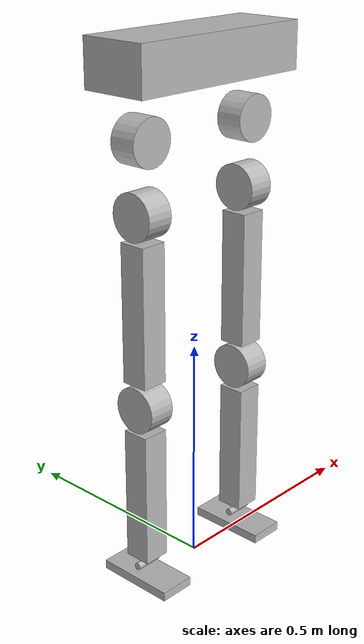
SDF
<?xml version="1.0" ?>
<sdf version="1.5">

<model name="simplified_biped">
    <link name="torso_connection">
        <self_collide> 1 </self_collide>

        <pose> 0 0 1.115 0 0 0 </pose>

        <inertial>
            <mass>0.001</mass>

            <inertia>
                <ixx>0.000003</ixx>
                <iyy>0.0000166</iyy>
                <izz>0.0000175</izz>
                <ixy>0</ixy>
                <ixz>0</ixz>
                <iyz>0</iyz>
            </inertia>
        </inertial>

        <collision name="torso_connection_collision">
            <geometry>
                <box>
                    <size> 0.44 0.15 0.10 </size>
                </box>
            </geometry>
        </collision>

        <visual name="torso_connection_visual">
            <geometry>
                <box>
                    <size> 0.44 0.15 0.10 </size>
                </box>
            </geometry>
        </visual>
    </link>

    <!--Left leg-->
    <link name="left_lower_leg">

        <self_collide>1</self_collide>

        <pose> 0.15 0 0.21 0 0 0 </pose>

            <inertial>
                <mass>0.1</mass>
                <inertia>
                    <ixx>0.00076</ixx>
                    <izz>0.00006</izz>
                    <iyy>0.00076</iyy>
                    <ixy>0</ixy>
                    <ixz>0</ixz>
                    <iyz>0</iyz>
                </inertia>
            </inertial>

            <collision name="left_base_collision">
                <geometry>
                    <box>
                        <size> 0.06 0.06 0.3 </size>
                    </box>
                </geometry>
            </collision>

            <visual name="left_base_visual">
                <geometry>
                    <box>
                        <size> 0.06 0.06 0.3 </size>
                    </box>
                </geometry>
            </visual>
    </link>

    <link name="left_knee">

        <self_collide>1</self_collide>
        <pose> 0.15 0 0.415 0 1.570796 0</pose>

        <inertial>
            <mass>0.01</mass>
            <inertia>
                <ixx>0.000005</ixx>
                <iyy>0.000005</iyy>
                <izz>0.000007</izz>
                <ixy>0</ixy>
                <ixz>0</ixz>
                <iyz>0</iyz>
            </inertia>
        </inertial>

        <collision name="left_knee_collision">
            <geometry>
                <cylinder>
                    <radius>0.05</radius>
                    <length>0.06</length>
                </cylinder>
            </geometry>
        </collision>

        <visual name="left_knee_visual">
            <pose> 0 0 0 0 0 0</pose>
            <geometry>
                <cylinder>
                    <radius>0.05</radius>
                    <length>0.06</length>
                </cylinder>
            </geometry>
        </visual>
    </link>

    <link name="left_upper_leg">

        <self_collide>1</self_collide>

        <pose> 0.15 0 0.62 0 0 0 </pose>

        <inertial>
            <mass>0.1</mass>
            <inertia>
                <ixx>0.00076</ixx>
                <iyy>0.00076</iyy>
                <izz>0.00006</izz>
                <ixy>0</ixy>
                <ixz>0</ixz>
                <iyz>0</iyz>
            </inertia>
        </inertial>

        <!-- To make them perfectly stacked: 0.65m height-->

        <collision name="left_upper_leg_collision">
            <geometry>
                <box>
                    <size> 0.06 0.06 0.3 </size>
                </box>
            </geometry>
        </collision>

        <visual name="left_upper_leg_visual">
            <geometry>
                <box>
                    <size> 0.06 0.06 0.3 </size>
                </box>
            </geometry>
        </visual>
    </link>

    <link name="left_foot_base">

        <self_collide>1</self_collide>
        <pose> 0.15 0 0.01 0 0 0</pose>

        <inertial>
            <mass>0.01</mass>
            <inertia>
                <ixx>0.000025</ixx>
                <iyy>0.0000045</iyy>
                <izz>0.000028</izz>
                <ixy>0</ixy>
                <ixz>0</ixz>
                <iyz>0</iyz>
            </inertia>
        </inertial>

        <collision name="left_foot_base_collision">
            <geometry>
                <box>
                    <size> 0.08 0.18 0.02</size>
                </box>
            </geometry>
        </collision>

        <visual name="left_foot_base_visual">
            <geometry>
                <box>
                    <size> 0.08 0.18 0.02</size>
                </box>
            </geometry>
        </visual>
    </link>

    <link name="left_ankle">

        <self_collide>1</self_collide>
        <pose> 0.15 0 0.04 0 1.570796 0 </pose>

        <inertial>
            <mass>0.03</mass>
            <inertia>
                <ixx>0.0000024</ixx>
                <iyy>0.0000024</iyy>
                <izz>0.0000004</izz>
                <ixy>0</ixy>
                <ixz>0</ixz>
                <iyz>0</iyz>
            </inertia>
        </inertial>

        <collision name="left_ankle_collision">
            <geometry>
                <cylinder>
                    <radius>0.008</radius>
                    <length>0.06</length>
                </cylinder>
            </geometry>
        </collision>

        <visual name="left_ankle_visual">
            <geometry>
                <cylinder>
                    <radius>0.008</radius>
                    <length>0.06</length>
                </cylinder>
            </geometry>
        </visual>
    </link>

    <link name="left_hip_axis_1">

        <self_collide>1</self_collide>
        <pose> 0.15 0 0.825 0 1.570796 0 </pose>

        <inertial>
            <mass>0.1</mass>
            <inertia>
                <ixx>0.0001</ixx>
                <iyy>0.0001</iyy>
                <izz>0.00014</izz>
                <ixy>0</ixy>
                <ixz>0</ixz>
                <iyz>0</iyz>
            </inertia>
        </inertial>

        <collision name="left_hip_axis_1_collision">
            <geometry>
                <cylinder>
                    <radius>0.05</radius>
                    <length>0.06</length>
                </cylinder>
            </geometry>
        </collision>

        <visual name="left_hip_axis_1_visual">
            <pose> 0 0 0 0 0 0</pose>
            <geometry>
                <cylinder>
                    <radius>0.05</radius>
                    <length>0.06</length>
                </cylinder>
            </geometry>
        </visual>
    </link>

    <link name="left_hip_axis_2">

        <self_collide>1</self_collide>
        <pose> 0.15 0 0.97 0 1.570796 1.570796 </pose>

        <inertial>
            <mass>0.1</mass>
            <inertia>
                <ixx>0.0001</ixx>
                <iyy>0.0001</iyy>
                <izz>0.00014</izz>
                <ixy>0</ixy>
                <ixz>0</ixz>
                <iyz>0</iyz>
            </inertia>
        </inertial>

        <collision name="left_hip_axis_2_collision">
            <geometry>
                <cylinder>
                    <radius>0.05</radius>
                    <length>0.06</length>
                </cylinder>
            </geometry>
        </collision>

        <visual name="left_hip_axis_2_visual">
            <pose> 0 0 0 0 0 0</pose>
            <geometry>
                <cylinder>
                    <radius>0.05</radius>
                    <length>0.06</length>
                </cylinder>
            </geometry>
        </visual>
    </link>

    <link name="left_hip_axis_3">

        <self_collide>1</self_collide>
        <pose> 0.15 0 1.115 0 0 0 </pose> <!--145mm from center of hip axis 2-->

        <inertial>
            <mass>0.1</mass>
            <inertia>
                <ixx>0.0001</ixx>
                <iyy>0.0001</iyy>
                <izz>0.00014</izz>
                <ixy>0</ixy>
                <ixz>0</ixz>
                <iyz>0</iyz>
            </inertia>
        </inertial>

        <collision name="left_hip_axis_3_collision">
            <geometry>
                <cylinder>
                    <radius>0.05</radius>
                    <length>0.06</length>
                </cylinder>
            </geometry>
        </collision>

        <visual name="left_hip_axis_3_visual">
            <geometry>
                <cylinder>
                    <radius>0.05</radius>
                    <length>0.06</length>
                </cylinder>
            </geometry>
        </visual>
    </link>

    <joint type="revolute" name="left_knee_lower_leg_joint">

        <pose> 0 0 0.205 0 0 0 </pose>

        <parent>left_knee</parent>

        <child>left_lower_leg</child>

        <axis>
            <xyz>1 0 0 </xyz>
        </axis>
    </joint>

    <joint type="revolute" name="left_hip_axis_1_upper_leg_joint">

        <pose> 0 0 0.205 0 0 0 </pose>

        <parent>left_hip_axis_1</parent>

        <child>left_upper_leg</child>

        <axis>
            <xyz>1 0 0 </xyz>
        </axis>
    </joint>

    <joint type="revolute" name="left_hip_axis_2_hip_axis_1_joint">
        <pose> -0.145 0 0 0 -1.570796 0 </pose>

        <parent>left_hip_axis_2</parent>
        <child>left_hip_axis_1</child>

        <axis>
            <xyz> 0 1 0 </xyz>
        </axis>
    </joint>

    <joint type="revolute" name="left_hip_axis_3_hip_axis_2_joint">
        <pose> -0.145 0 0 0 -1.5707 0 </pose>

        <parent>left_hip_axis_3</parent>
        <child>left_hip_axis_2</child>

        <axis>
            <xyz> 0 0 1 </xyz>
        </axis>
    </joint>

    <!--Change joint type back to revolute if actively driven ankle joint is needed-->
    <joint type="revolute" name="left_ankle_foot_base_joint">
        <pose> 0 0 0.03 0 0 0 </pose>

        <parent>left_ankle</parent>
        <child>left_foot_base</child>
        <axis>
            <xyz>1 0 0 </xyz>
        </axis>
    </joint>

    <joint type="fixed" name="left_knee_upper_leg_joint">
        <pose>0 0 0 0 0 0 </pose>
        <parent>left_upper_leg</parent>
        <child>left_knee</child>
    </joint>

    <joint type="fixed" name="left_ankle_lower_leg_joint">
        <pose> 0 0 0 0 0 0 </pose>
        <parent>left_lower_leg</parent>
        <child>left_ankle</child>
    </joint>

    <!--Right leg-->

    <link name="right_lower_leg">

        <self_collide>1</self_collide>

        <pose> -0.15 0 0.21 0 0 0 </pose>

            <inertial>
                <mass>0.1</mass>
                <inertia>
                    <ixx>0.00076</ixx>
                    <izz>0.00006</izz>
                    <iyy>0.00076</iyy>
                    <ixy>0</ixy>
                    <ixz>0</ixz>
                    <iyz>0</iyz>
                </inertia>
            </inertial>

            <collision name="right_base_collision">
                <geometry>
                    <box>
                        <size> 0.06 0.06 0.3 </size>
                    </box>
                </geometry>
            </collision>

            <visual name="right_base_visual">
                <geometry>
                    <box>
                        <size> 0.06 0.06 0.3 </size>
                    </box>
                </geometry>
            </visual>
    </link>

    <link name="right_knee">

        <self_collide>1</self_collide>
        <pose> -0.15 0 0.415 0 1.570796 0</pose>

        <inertial>
            <mass>0.01</mass>
            <inertia>
                <ixx>0.000005</ixx>
                <iyy>0.000005</iyy>
                <izz>0.000007</izz>
                <ixy>0</ixy>
                <ixz>0</ixz>
                <iyz>0</iyz>
            </inertia>
        </inertial>

        <collision name="right_knee_collision">
            <geometry>
                <cylinder>
                    <radius>0.05</radius>
                    <length>0.06</length>
                </cylinder>
            </geometry>
        </collision>

        <visual name="right_knee_visual">
            <pose> 0 0 0 0 0 0</pose>
            <geometry>
                <cylinder>
                    <radius>0.05</radius>
                    <length>0.06</length>
                </cylinder>
            </geometry>
        </visual>
    </link>

    <link name="right_upper_leg">

        <self_collide>1</self_collide>

        <pose> -0.15 0 0.62 0 0 0 </pose>

        <inertial>
            <mass>0.1</mass>
            <inertia>
                <ixx>0.00076</ixx>
                <iyy>0.00076</iyy>
                <izz>0.00006</izz>
                <ixy>0</ixy>
                <ixz>0</ixz>
                <iyz>0</iyz>
            </inertia>
        </inertial>

        <!-- To make them perfectly stacked: 0.65m height-->

        <collision name="right_upper_leg_collision">
            <geometry>
                <box>
                    <size> 0.06 0.06 0.3 </size>
                </box>
            </geometry>
        </collision>

        <visual name="right_upper_leg_visual">
            <geometry>
                <box>
                    <size> 0.06 0.06 0.3 </size>
                </box>
            </geometry>
        </visual>
    </link>

    <link name="right_foot_base">

        <self_collide>1</self_collide>
        <pose> -0.15 0 0.01 0 0 0</pose>

        <inertial>
            <mass>0.01</mass>
            <inertia>
                <ixx>0.000025</ixx>
                <iyy>0.0000045</iyy>
                <izz>0.000028</izz>
                <ixy>0</ixy>
                <ixz>0</ixz>
                <iyz>0</iyz>
            </inertia>
        </inertial>

        <collision name="right_foot_base_collision">
            <geometry>
                <box>
                    <size> 0.08 0.18 0.02</size>
                </box>
            </geometry>
        </collision>

        <visual name="right_foot_base_visual">
            <geometry>
                <box>
                    <size> 0.08 0.18 0.02</size>
                </box>
            </geometry>
        </visual>
    </link>

    <link name="right_ankle">

        <self_collide>1</self_collide>
        <pose> -0.15 0 0.04 0 1.570796 0 </pose>

        <inertial>
            <mass>0.03</mass>
            <inertia>
                <ixx>0.0000024</ixx>
                <iyy>0.0000024</iyy>
                <izz>0.0000004</izz>
                <ixy>0</ixy>
                <ixz>0</ixz>
                <iyz>0</iyz>
            </inertia>
        </inertial>

        <collision name="right_ankle_collision">
            <geometry>
                <cylinder>
                    <radius>0.008</radius>
                    <length>0.06</length>
                </cylinder>
            </geometry>
        </collision>

        <visual name="right_ankle_visual">
            <geometry>
                <cylinder>
                    <radius>0.008</radius>
                    <length>0.06</length>
                </cylinder>
            </geometry>
        </visual>
    </link>

    <link name="right_hip_axis_1">

        <self_collide>1</self_collide>
        <pose> -0.15 0 0.825 0 1.570796 0 </pose>

        <inertial>
            <mass>0.1</mass>
            <inertia>
                <ixx>0.0001</ixx>
                <iyy>0.0001</iyy>
                <izz>0.00014</izz>
                <ixy>0</ixy>
                <ixz>0</ixz>
                <iyz>0</iyz>
            </inertia>
        </inertial>

        <collision name="right_hip_axis_1_collision">
            <geometry>
                <cylinder>
                    <radius>0.05</radius>
                    <length>0.06</length>
                </cylinder>
            </geometry>
        </collision>

        <visual name="right_hip_axis_1_visual">
            <pose> 0 0 0 0 0 0</pose>
            <geometry>
                <cylinder>
                    <radius>0.05</radius>
                    <length>0.06</length>
                </cylinder>
            </geometry>
        </visual>
    </link>

    <link name="right_hip_axis_2">

        <self_collide>1</self_collide>
        <pose> -0.15 0 0.97 0 1.570796 1.570796 </pose>

        <inertial>
            <mass>0.1</mass>
            <inertia>
                <ixx>0.0001</ixx>
                <iyy>0.0001</iyy>
                <izz>0.00014</izz>
                <ixy>0</ixy>
                <ixz>0</ixz>
                <iyz>0</iyz>
            </inertia>
        </inertial>

        <collision name="right_hip_axis_2_collision">
            <geometry>
                <cylinder>
                    <radius>0.05</radius>
                    <length>0.06</length>
                </cylinder>
            </geometry>
        </collision>

        <visual name="right_hip_axis_2_visual">
            <pose> 0 0 0 0 0 0</pose>
            <geometry>
                <cylinder>
                    <radius>0.05</radius>
                    <length>0.06</length>
                </cylinder>
            </geometry>
        </visual>
    </link>

    <link name="right_hip_axis_3">

        <self_collide>1</self_collide>
        <pose> -0.15 0 1.115 0 0 0 </pose> <!--145mm from center of hip axis 2-->

        <inertial>
            <mass>0.1</mass>
            <inertia>
                <ixx>0.00010</ixx>
                <iyy>0.00010</iyy>
                <izz>0.00014</izz>
                <ixy>0</ixy>
                <ixz>0</ixz>
                <iyz>0</iyz>
            </inertia>
        </inertial>

        <collision name="right_hip_axis_3_collision">
            <geometry>
                <cylinder>
                    <radius>0.05</radius>
                    <length>0.06</length>
                </cylinder>
            </geometry>
        </collision>

        <visual name="right_hip_axis_3_visual">
            <geometry>
                <cylinder>
                    <radius>0.05</radius>
                    <length>0.06</length>
                </cylinder>
            </geometry>
        </visual>
    </link>

    <joint type="revolute" name="right_knee_lower_leg_joint">

        <pose> 0 0 0.205 0 0 0 </pose>

        <parent>right_knee</parent>

        <child>right_lower_leg</child>

        <axis>
            <xyz>1 0 0 </xyz>
        </axis>
    </joint>

    <joint type="revolute" name="right_hip_axis_1_upper_leg_joint">

        <pose> 0 0 0.205 0 0 0 </pose>

        <parent>right_hip_axis_1</parent>

        <child>right_upper_leg</child>

        <axis>
            <xyz>1 0 0 </xyz>
        </axis>
    </joint>

    <joint type="revolute" name="right_hip_axis_2_hip_axis_1_joint">
        <pose> -0.145 0 0 0 -1.570796 0 </pose>

        <parent>right_hip_axis_2</parent>
        <child>right_hip_axis_1</child>

        <axis>
            <xyz> 0 1 0 </xyz>
        </axis>
    </joint>

    <joint type="revolute" name="right_hip_axis_3_hip_axis_2_joint">
        <pose> -0.145 0 0 0 -1.5707 0 </pose>

        <parent>right_hip_axis_3</parent>
        <child>right_hip_axis_2</child>

        <axis>
            <xyz> 0 0 1 </xyz>
        </axis>
    </joint>

    <!--Change joint type back to revolute if actively driven ankle joint is needed-->
    <joint type="revolute" name="right_ankle_foot_base_joint">
        <pose> 0 0 0.03 0 0 0 </pose>

        <parent>right_ankle</parent>
        <child>right_foot_base</child>
        <limit>
            <lower>0</lower>
            <upper>0</upper>
        </limit>
        <axis>
            <xyz>1 0 0 </xyz>
        </axis>
    </joint>

    <joint type="fixed" name="right_knee_upper_leg_joint">
        <pose>0 0 0 0 0 0 </pose>
        <parent>right_upper_leg</parent>
        <child>right_knee</child>
    </joint>

    <joint type="fixed" name="right_ankle_lower_leg_joint">
        <pose> 0 0 0 0 0 0 </pose>
        <parent>right_lower_leg</parent>
        <child>right_ankle</child>
    </joint>

    <joint type="fixed" name="left_torso_connection_joint">
        <pose> 0 0 0 0 0 0 </pose>
        <parent>torso_connection</parent>
        <child>left_hip_axis_3</child>
    </joint>

    <joint type="fixed" name="right_torso_connection_joint">
        <pose> 0 0 0 0 0 0 </pose>
        <parent>torso_connection</parent>
        <child>right_hip_axis_3</child>
    </joint>

</model>
</sdf>
